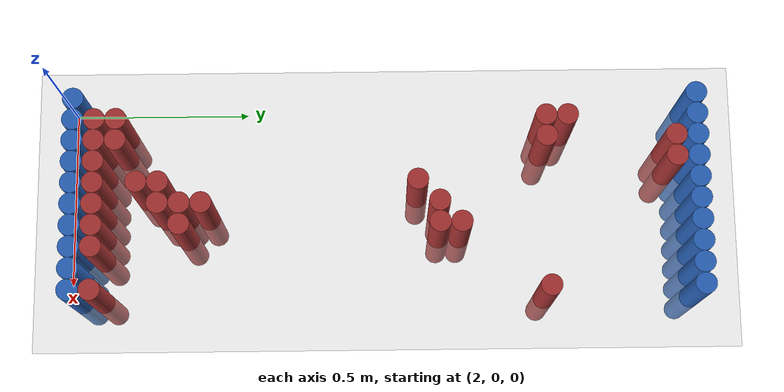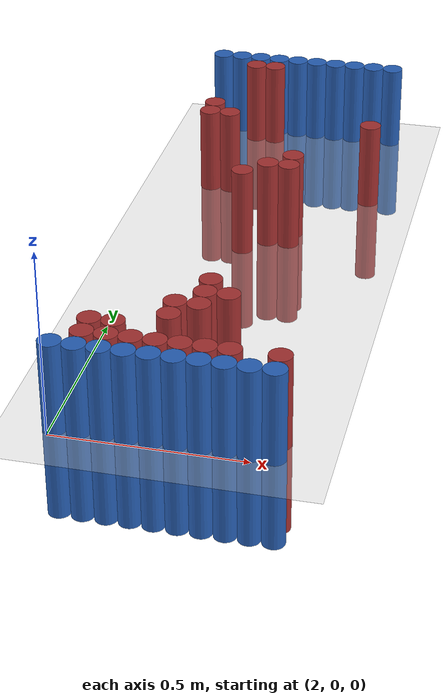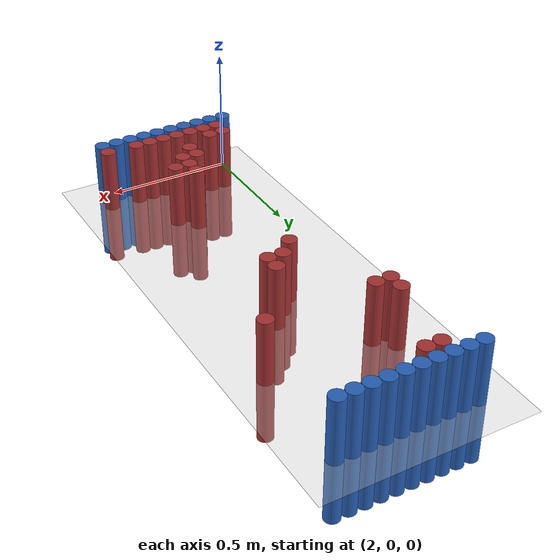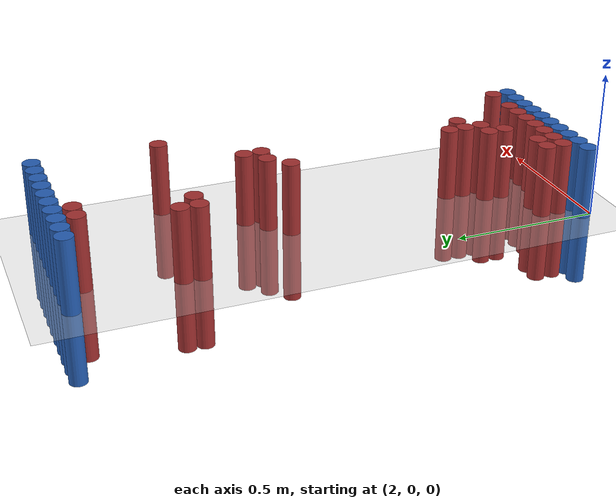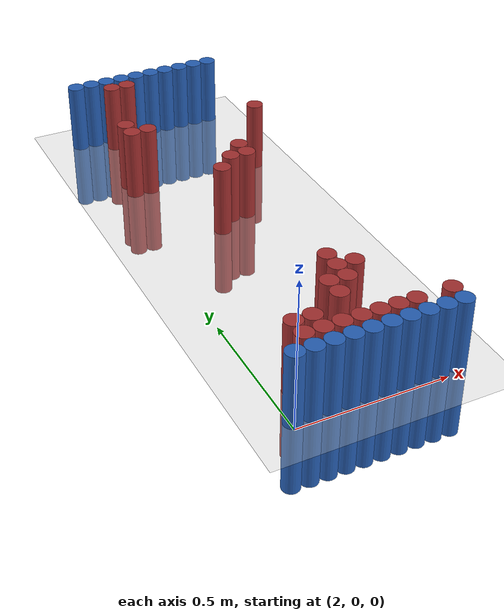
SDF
<sdf version="1.6">
 <world name="default">
  <model name="ground_plane">
   <static>1</static>
   <link name="link">
    <collision name="collision">
     <geometry><plane><normal>0 0 1</normal><size>100 100</size></plane></geometry>
     <surface><friction><ode><mu>100</mu><mu2>50</mu2></ode></friction></surface>
    </collision>
    <visual name="visual">
     <cast_shadows>0</cast_shadows>
     <geometry><plane><normal>0 0 1</normal><size>100 100</size></plane></geometry>
     <material>
      <script><uri>file://media/materials/scripts/gazebo.material</uri><name>Gazebo/Grey</name></script>
     </material>
    </visual>
   </link>
  </model>
  <model name="unit_cylinder_93">
   <static>1</static>
   <pose>2.010000 0.030000 0.000000 0.000000 0.000000 0.000000</pose>
   <link name="link">
    <inertial>
     <mass>1</mass>
     <inertia><ixx>0.145833</ixx><ixy>0</ixy><ixz>0</ixz><iyy>0.145833</iyy><iyz>0</iyz><izz>0.125</izz></inertia>
    </inertial>
    <collision name="collision">
     <geometry><cylinder><radius>0.030000</radius><length>0.5</length></cylinder></geometry>
    </collision>
    <visual name="visual">
     <geometry><cylinder><radius>0.030000</radius><length>0.5</length></cylinder></geometry>
     <material>
      <ambient>0.152000 0.379000 0.720000 1</ambient>
      <diffuse>0.152000 0.379000 0.720000 1</diffuse>
     </material>
     <material>
      <script><name>Gazebo/Grey</name><uri>file://media/materials/scripts/gazebo.material</uri></script>
     </material>
    </visual>
   </link>
  </model>
  <model name="unit_cylinder_94">
   <static>1</static>
   <pose>2.010000 1.770000 0.000000 0.000000 0.000000 0.000000</pose>
   <link name="link">
    <inertial>
     <mass>1</mass>
     <inertia><ixx>0.145833</ixx><ixy>0</ixy><ixz>0</ixz><iyy>0.145833</iyy><iyz>0</iyz><izz>0.125</izz></inertia>
    </inertial>
    <collision name="collision">
     <geometry><cylinder><radius>0.030000</radius><length>0.5</length></cylinder></geometry>
    </collision>
    <visual name="visual">
     <geometry><cylinder><radius>0.030000</radius><length>0.5</length></cylinder></geometry>
     <material>
      <ambient>0.152000 0.379000 0.720000 1</ambient>
      <diffuse>0.152000 0.379000 0.720000 1</diffuse>
     </material>
     <material>
      <script><name>Gazebo/Grey</name><uri>file://media/materials/scripts/gazebo.material</uri></script>
     </material>
    </visual>
   </link>
  </model>
  <model name="unit_cylinder_95">
   <static>1</static>
   <pose>2.070000 1.770000 0.000000 0.000000 0.000000 0.000000</pose>
   <link name="link">
    <inertial>
     <mass>1</mass>
     <inertia><ixx>0.145833</ixx><ixy>0</ixy><ixz>0</ixz><iyy>0.145833</iyy><iyz>0</iyz><izz>0.125</izz></inertia>
    </inertial>
    <collision name="collision">
     <geometry><cylinder><radius>0.030000</radius><length>0.5</length></cylinder></geometry>
    </collision>
    <visual name="visual">
     <geometry><cylinder><radius>0.030000</radius><length>0.5</length></cylinder></geometry>
     <material>
      <ambient>0.152000 0.379000 0.720000 1</ambient>
      <diffuse>0.152000 0.379000 0.720000 1</diffuse>
     </material>
     <material>
      <script><name>Gazebo/Grey</name><uri>file://media/materials/scripts/gazebo.material</uri></script>
     </material>
    </visual>
   </link>
  </model>
  <model name="unit_cylinder_96">
   <static>1</static>
   <pose>2.130000 1.770000 0.000000 0.000000 0.000000 0.000000</pose>
   <link name="link">
    <inertial>
     <mass>1</mass>
     <inertia><ixx>0.145833</ixx><ixy>0</ixy><ixz>0</ixz><iyy>0.145833</iyy><iyz>0</iyz><izz>0.125</izz></inertia>
    </inertial>
    <collision name="collision">
     <geometry><cylinder><radius>0.030000</radius><length>0.5</length></cylinder></geometry>
    </collision>
    <visual name="visual">
     <geometry><cylinder><radius>0.030000</radius><length>0.5</length></cylinder></geometry>
     <material>
      <ambient>0.152000 0.379000 0.720000 1</ambient>
      <diffuse>0.152000 0.379000 0.720000 1</diffuse>
     </material>
     <material>
      <script><name>Gazebo/Grey</name><uri>file://media/materials/scripts/gazebo.material</uri></script>
     </material>
    </visual>
   </link>
  </model>
  <model name="unit_cylinder_97">
   <static>1</static>
   <pose>2.190000 1.770000 0.000000 0.000000 0.000000 0.000000</pose>
   <link name="link">
    <inertial>
     <mass>1</mass>
     <inertia><ixx>0.145833</ixx><ixy>0</ixy><ixz>0</ixz><iyy>0.145833</iyy><iyz>0</iyz><izz>0.125</izz></inertia>
    </inertial>
    <collision name="collision">
     <geometry><cylinder><radius>0.030000</radius><length>0.5</length></cylinder></geometry>
    </collision>
    <visual name="visual">
     <geometry><cylinder><radius>0.030000</radius><length>0.5</length></cylinder></geometry>
     <material>
      <ambient>0.152000 0.379000 0.720000 1</ambient>
      <diffuse>0.152000 0.379000 0.720000 1</diffuse>
     </material>
     <material>
      <script><name>Gazebo/Grey</name><uri>file://media/materials/scripts/gazebo.material</uri></script>
     </material>
    </visual>
   </link>
  </model>
  <model name="unit_cylinder_98">
   <static>1</static>
   <pose>2.250000 1.770000 0.000000 0.000000 0.000000 0.000000</pose>
   <link name="link">
    <inertial>
     <mass>1</mass>
     <inertia><ixx>0.145833</ixx><ixy>0</ixy><ixz>0</ixz><iyy>0.145833</iyy><iyz>0</iyz><izz>0.125</izz></inertia>
    </inertial>
    <collision name="collision">
     <geometry><cylinder><radius>0.030000</radius><length>0.5</length></cylinder></geometry>
    </collision>
    <visual name="visual">
     <geometry><cylinder><radius>0.030000</radius><length>0.5</length></cylinder></geometry>
     <material>
      <ambient>0.152000 0.379000 0.720000 1</ambient>
      <diffuse>0.152000 0.379000 0.720000 1</diffuse>
     </material>
     <material>
      <script><name>Gazebo/Grey</name><uri>file://media/materials/scripts/gazebo.material</uri></script>
     </material>
    </visual>
   </link>
  </model>
  <model name="unit_cylinder_99">
   <static>1</static>
   <pose>2.310000 1.770000 0.000000 0.000000 0.000000 0.000000</pose>
   <link name="link">
    <inertial>
     <mass>1</mass>
     <inertia><ixx>0.145833</ixx><ixy>0</ixy><ixz>0</ixz><iyy>0.145833</iyy><iyz>0</iyz><izz>0.125</izz></inertia>
    </inertial>
    <collision name="collision">
     <geometry><cylinder><radius>0.030000</radius><length>0.5</length></cylinder></geometry>
    </collision>
    <visual name="visual">
     <geometry><cylinder><radius>0.030000</radius><length>0.5</length></cylinder></geometry>
     <material>
      <ambient>0.152000 0.379000 0.720000 1</ambient>
      <diffuse>0.152000 0.379000 0.720000 1</diffuse>
     </material>
     <material>
      <script><name>Gazebo/Grey</name><uri>file://media/materials/scripts/gazebo.material</uri></script>
     </material>
    </visual>
   </link>
  </model>
  <model name="unit_cylinder_100">
   <static>1</static>
   <pose>2.370000 1.770000 0.000000 0.000000 0.000000 0.000000</pose>
   <link name="link">
    <inertial>
     <mass>1</mass>
     <inertia><ixx>0.145833</ixx><ixy>0</ixy><ixz>0</ixz><iyy>0.145833</iyy><iyz>0</iyz><izz>0.125</izz></inertia>
    </inertial>
    <collision name="collision">
     <geometry><cylinder><radius>0.030000</radius><length>0.5</length></cylinder></geometry>
    </collision>
    <visual name="visual">
     <geometry><cylinder><radius>0.030000</radius><length>0.5</length></cylinder></geometry>
     <material>
      <ambient>0.152000 0.379000 0.720000 1</ambient>
      <diffuse>0.152000 0.379000 0.720000 1</diffuse>
     </material>
     <material>
      <script><name>Gazebo/Grey</name><uri>file://media/materials/scripts/gazebo.material</uri></script>
     </material>
    </visual>
   </link>
  </model>
  <model name="unit_cylinder_101">
   <static>1</static>
   <pose>2.430000 1.770000 0.000000 0.000000 0.000000 0.000000</pose>
   <link name="link">
    <inertial>
     <mass>1</mass>
     <inertia><ixx>0.145833</ixx><ixy>0</ixy><ixz>0</ixz><iyy>0.145833</iyy><iyz>0</iyz><izz>0.125</izz></inertia>
    </inertial>
    <collision name="collision">
     <geometry><cylinder><radius>0.030000</radius><length>0.5</length></cylinder></geometry>
    </collision>
    <visual name="visual">
     <geometry><cylinder><radius>0.030000</radius><length>0.5</length></cylinder></geometry>
     <material>
      <ambient>0.152000 0.379000 0.720000 1</ambient>
      <diffuse>0.152000 0.379000 0.720000 1</diffuse>
     </material>
     <material>
      <script><name>Gazebo/Grey</name><uri>file://media/materials/scripts/gazebo.material</uri></script>
     </material>
    </visual>
   </link>
  </model>
  <model name="unit_cylinder_102">
   <static>1</static>
   <pose>2.490000 1.770000 0.000000 0.000000 0.000000 0.000000</pose>
   <link name="link">
    <inertial>
     <mass>1</mass>
     <inertia><ixx>0.145833</ixx><ixy>0</ixy><ixz>0</ixz><iyy>0.145833</iyy><iyz>0</iyz><izz>0.125</izz></inertia>
    </inertial>
    <collision name="collision">
     <geometry><cylinder><radius>0.030000</radius><length>0.5</length></cylinder></geometry>
    </collision>
    <visual name="visual">
     <geometry><cylinder><radius>0.030000</radius><length>0.5</length></cylinder></geometry>
     <material>
      <ambient>0.152000 0.379000 0.720000 1</ambient>
      <diffuse>0.152000 0.379000 0.720000 1</diffuse>
     </material>
     <material>
      <script><name>Gazebo/Grey</name><uri>file://media/materials/scripts/gazebo.material</uri></script>
     </material>
    </visual>
   </link>
  </model>
  <model name="unit_cylinder_103">
   <static>1</static>
   <pose>2.550000 1.770000 0.000000 0.000000 0.000000 0.000000</pose>
   <link name="link">
    <inertial>
     <mass>1</mass>
     <inertia><ixx>0.145833</ixx><ixy>0</ixy><ixz>0</ixz><iyy>0.145833</iyy><iyz>0</iyz><izz>0.125</izz></inertia>
    </inertial>
    <collision name="collision">
     <geometry><cylinder><radius>0.030000</radius><length>0.5</length></cylinder></geometry>
    </collision>
    <visual name="visual">
     <geometry><cylinder><radius>0.030000</radius><length>0.5</length></cylinder></geometry>
     <material>
      <ambient>0.152000 0.379000 0.720000 1</ambient>
      <diffuse>0.152000 0.379000 0.720000 1</diffuse>
     </material>
     <material>
      <script><name>Gazebo/Grey</name><uri>file://media/materials/scripts/gazebo.material</uri></script>
     </material>
    </visual>
   </link>
  </model>
  <model name="unit_cylinder_125">
   <static>1</static>
   <pose>2.130000 1.710000 0.000000 0.000000 0.000000 0.000000</pose>
   <link name="link">
    <inertial>
     <mass>1</mass>
     <inertia><ixx>0.145833</ixx><ixy>0</ixy><ixz>0</ixz><iyy>0.145833</iyy><iyz>0</iyz><izz>0.125</izz></inertia>
    </inertial>
    <collision name="collision">
     <geometry><cylinder><radius>0.030000</radius><length>0.5</length></cylinder></geometry>
    </collision>
    <visual name="visual">
     <geometry><cylinder><radius>0.030000</radius><length>0.5</length></cylinder></geometry>
     <material>
      <ambient>0.648000 0.192000 0.192000 1</ambient>
      <diffuse>0.648000 0.192000 0.192000 1</diffuse>
     </material>
     <material>
      <script><name>Gazebo/Grey</name><uri>file://media/materials/scripts/gazebo.material</uri></script>
     </material>
    </visual>
   </link>
  </model>
  <model name="unit_cylinder_126">
   <static>1</static>
   <pose>2.190000 1.710000 0.000000 0.000000 0.000000 0.000000</pose>
   <link name="link">
    <inertial>
     <mass>1</mass>
     <inertia><ixx>0.145833</ixx><ixy>0</ixy><ixz>0</ixz><iyy>0.145833</iyy><iyz>0</iyz><izz>0.125</izz></inertia>
    </inertial>
    <collision name="collision">
     <geometry><cylinder><radius>0.030000</radius><length>0.5</length></cylinder></geometry>
    </collision>
    <visual name="visual">
     <geometry><cylinder><radius>0.030000</radius><length>0.5</length></cylinder></geometry>
     <material>
      <ambient>0.648000 0.192000 0.192000 1</ambient>
      <diffuse>0.648000 0.192000 0.192000 1</diffuse>
     </material>
     <material>
      <script><name>Gazebo/Grey</name><uri>file://media/materials/scripts/gazebo.material</uri></script>
     </material>
    </visual>
   </link>
  </model>
  <model name="unit_cylinder_135">
   <static>1</static>
   <pose>2.070000 1.410000 0.000000 0.000000 0.000000 0.000000</pose>
   <link name="link">
    <inertial>
     <mass>1</mass>
     <inertia><ixx>0.145833</ixx><ixy>0</ixy><ixz>0</ixz><iyy>0.145833</iyy><iyz>0</iyz><izz>0.125</izz></inertia>
    </inertial>
    <collision name="collision">
     <geometry><cylinder><radius>0.030000</radius><length>0.5</length></cylinder></geometry>
    </collision>
    <visual name="visual">
     <geometry><cylinder><radius>0.030000</radius><length>0.5</length></cylinder></geometry>
     <material>
      <ambient>0.648000 0.192000 0.192000 1</ambient>
      <diffuse>0.648000 0.192000 0.192000 1</diffuse>
     </material>
     <material>
      <script><name>Gazebo/Grey</name><uri>file://media/materials/scripts/gazebo.material</uri></script>
     </material>
    </visual>
   </link>
  </model>
  <model name="unit_cylinder_138">
   <static>1</static>
   <pose>2.070000 1.350000 0.000000 0.000000 0.000000 0.000000</pose>
   <link name="link">
    <inertial>
     <mass>1</mass>
     <inertia><ixx>0.145833</ixx><ixy>0</ixy><ixz>0</ixz><iyy>0.145833</iyy><iyz>0</iyz><izz>0.125</izz></inertia>
    </inertial>
    <collision name="collision">
     <geometry><cylinder><radius>0.030000</radius><length>0.5</length></cylinder></geometry>
    </collision>
    <visual name="visual">
     <geometry><cylinder><radius>0.030000</radius><length>0.5</length></cylinder></geometry>
     <material>
      <ambient>0.648000 0.192000 0.192000 1</ambient>
      <diffuse>0.648000 0.192000 0.192000 1</diffuse>
     </material>
     <material>
      <script><name>Gazebo/Grey</name><uri>file://media/materials/scripts/gazebo.material</uri></script>
     </material>
    </visual>
   </link>
  </model>
  <model name="unit_cylinder_139">
   <static>1</static>
   <pose>2.130000 1.350000 0.000000 0.000000 0.000000 0.000000</pose>
   <link name="link">
    <inertial>
     <mass>1</mass>
     <inertia><ixx>0.145833</ixx><ixy>0</ixy><ixz>0</ixz><iyy>0.145833</iyy><iyz>0</iyz><izz>0.125</izz></inertia>
    </inertial>
    <collision name="collision">
     <geometry><cylinder><radius>0.030000</radius><length>0.5</length></cylinder></geometry>
    </collision>
    <visual name="visual">
     <geometry><cylinder><radius>0.030000</radius><length>0.5</length></cylinder></geometry>
     <material>
      <ambient>0.648000 0.192000 0.192000 1</ambient>
      <diffuse>0.648000 0.192000 0.192000 1</diffuse>
     </material>
     <material>
      <script><name>Gazebo/Grey</name><uri>file://media/materials/scripts/gazebo.material</uri></script>
     </material>
    </visual>
   </link>
  </model>
  <model name="unit_cylinder_140">
   <static>1</static>
   <pose>2.550000 1.350000 0.000000 0.000000 0.000000 0.000000</pose>
   <link name="link">
    <inertial>
     <mass>1</mass>
     <inertia><ixx>0.145833</ixx><ixy>0</ixy><ixz>0</ixz><iyy>0.145833</iyy><iyz>0</iyz><izz>0.125</izz></inertia>
    </inertial>
    <collision name="collision">
     <geometry><cylinder><radius>0.030000</radius><length>0.5</length></cylinder></geometry>
    </collision>
    <visual name="visual">
     <geometry><cylinder><radius>0.030000</radius><length>0.5</length></cylinder></geometry>
     <material>
      <ambient>0.648000 0.192000 0.192000 1</ambient>
      <diffuse>0.648000 0.192000 0.192000 1</diffuse>
     </material>
     <material>
      <script><name>Gazebo/Grey</name><uri>file://media/materials/scripts/gazebo.material</uri></script>
     </material>
    </visual>
   </link>
  </model>
  <model name="unit_cylinder_148">
   <static>1</static>
   <pose>2.370000 1.110000 0.000000 0.000000 0.000000 0.000000</pose>
   <link name="link">
    <inertial>
     <mass>1</mass>
     <inertia><ixx>0.145833</ixx><ixy>0</ixy><ixz>0</ixz><iyy>0.145833</iyy><iyz>0</iyz><izz>0.125</izz></inertia>
    </inertial>
    <collision name="collision">
     <geometry><cylinder><radius>0.030000</radius><length>0.5</length></cylinder></geometry>
    </collision>
    <visual name="visual">
     <geometry><cylinder><radius>0.030000</radius><length>0.5</length></cylinder></geometry>
     <material>
      <ambient>0.648000 0.192000 0.192000 1</ambient>
      <diffuse>0.648000 0.192000 0.192000 1</diffuse>
     </material>
     <material>
      <script><name>Gazebo/Grey</name><uri>file://media/materials/scripts/gazebo.material</uri></script>
     </material>
    </visual>
   </link>
  </model>
  <model name="unit_cylinder_152">
   <static>1</static>
   <pose>2.310000 1.050000 0.000000 0.000000 0.000000 0.000000</pose>
   <link name="link">
    <inertial>
     <mass>1</mass>
     <inertia><ixx>0.145833</ixx><ixy>0</ixy><ixz>0</ixz><iyy>0.145833</iyy><iyz>0</iyz><izz>0.125</izz></inertia>
    </inertial>
    <collision name="collision">
     <geometry><cylinder><radius>0.030000</radius><length>0.5</length></cylinder></geometry>
    </collision>
    <visual name="visual">
     <geometry><cylinder><radius>0.030000</radius><length>0.5</length></cylinder></geometry>
     <material>
      <ambient>0.648000 0.192000 0.192000 1</ambient>
      <diffuse>0.648000 0.192000 0.192000 1</diffuse>
     </material>
     <material>
      <script><name>Gazebo/Grey</name><uri>file://media/materials/scripts/gazebo.material</uri></script>
     </material>
    </visual>
   </link>
  </model>
  <model name="unit_cylinder_153">
   <static>1</static>
   <pose>2.370000 1.050000 0.000000 0.000000 0.000000 0.000000</pose>
   <link name="link">
    <inertial>
     <mass>1</mass>
     <inertia><ixx>0.145833</ixx><ixy>0</ixy><ixz>0</ixz><iyy>0.145833</iyy><iyz>0</iyz><izz>0.125</izz></inertia>
    </inertial>
    <collision name="collision">
     <geometry><cylinder><radius>0.030000</radius><length>0.5</length></cylinder></geometry>
    </collision>
    <visual name="visual">
     <geometry><cylinder><radius>0.030000</radius><length>0.5</length></cylinder></geometry>
     <material>
      <ambient>0.648000 0.192000 0.192000 1</ambient>
      <diffuse>0.648000 0.192000 0.192000 1</diffuse>
     </material>
     <material>
      <script><name>Gazebo/Grey</name><uri>file://media/materials/scripts/gazebo.material</uri></script>
     </material>
    </visual>
   </link>
  </model>
  <model name="unit_cylinder_156">
   <static>1</static>
   <pose>2.250000 0.990000 0.000000 0.000000 0.000000 0.000000</pose>
   <link name="link">
    <inertial>
     <mass>1</mass>
     <inertia><ixx>0.145833</ixx><ixy>0</ixy><ixz>0</ixz><iyy>0.145833</iyy><iyz>0</iyz><izz>0.125</izz></inertia>
    </inertial>
    <collision name="collision">
     <geometry><cylinder><radius>0.030000</radius><length>0.5</length></cylinder></geometry>
    </collision>
    <visual name="visual">
     <geometry><cylinder><radius>0.030000</radius><length>0.5</length></cylinder></geometry>
     <material>
      <ambient>0.648000 0.192000 0.192000 1</ambient>
      <diffuse>0.648000 0.192000 0.192000 1</diffuse>
     </material>
     <material>
      <script><name>Gazebo/Grey</name><uri>file://media/materials/scripts/gazebo.material</uri></script>
     </material>
    </visual>
   </link>
  </model>
  <model name="unit_cylinder_166">
   <static>1</static>
   <pose>2.310000 0.390000 0.000000 0.000000 0.000000 0.000000</pose>
   <link name="link">
    <inertial>
     <mass>1</mass>
     <inertia><ixx>0.145833</ixx><ixy>0</ixy><ixz>0</ixz><iyy>0.145833</iyy><iyz>0</iyz><izz>0.125</izz></inertia>
    </inertial>
    <collision name="collision">
     <geometry><cylinder><radius>0.030000</radius><length>0.5</length></cylinder></geometry>
    </collision>
    <visual name="visual">
     <geometry><cylinder><radius>0.030000</radius><length>0.5</length></cylinder></geometry>
     <material>
      <ambient>0.648000 0.192000 0.192000 1</ambient>
      <diffuse>0.648000 0.192000 0.192000 1</diffuse>
     </material>
     <material>
      <script><name>Gazebo/Grey</name><uri>file://media/materials/scripts/gazebo.material</uri></script>
     </material>
    </visual>
   </link>
  </model>
  <model name="unit_cylinder_170">
   <static>1</static>
   <pose>2.310000 0.330000 0.000000 0.000000 0.000000 0.000000</pose>
   <link name="link">
    <inertial>
     <mass>1</mass>
     <inertia><ixx>0.145833</ixx><ixy>0</ixy><ixz>0</ixz><iyy>0.145833</iyy><iyz>0</iyz><izz>0.125</izz></inertia>
    </inertial>
    <collision name="collision">
     <geometry><cylinder><radius>0.030000</radius><length>0.5</length></cylinder></geometry>
    </collision>
    <visual name="visual">
     <geometry><cylinder><radius>0.030000</radius><length>0.5</length></cylinder></geometry>
     <material>
      <ambient>0.648000 0.192000 0.192000 1</ambient>
      <diffuse>0.648000 0.192000 0.192000 1</diffuse>
     </material>
     <material>
      <script><name>Gazebo/Grey</name><uri>file://media/materials/scripts/gazebo.material</uri></script>
     </material>
    </visual>
   </link>
  </model>
  <model name="unit_cylinder_171">
   <static>1</static>
   <pose>2.370000 0.330000 0.000000 0.000000 0.000000 0.000000</pose>
   <link name="link">
    <inertial>
     <mass>1</mass>
     <inertia><ixx>0.145833</ixx><ixy>0</ixy><ixz>0</ixz><iyy>0.145833</iyy><iyz>0</iyz><izz>0.125</izz></inertia>
    </inertial>
    <collision name="collision">
     <geometry><cylinder><radius>0.030000</radius><length>0.5</length></cylinder></geometry>
    </collision>
    <visual name="visual">
     <geometry><cylinder><radius>0.030000</radius><length>0.5</length></cylinder></geometry>
     <material>
      <ambient>0.648000 0.192000 0.192000 1</ambient>
      <diffuse>0.648000 0.192000 0.192000 1</diffuse>
     </material>
     <material>
      <script><name>Gazebo/Grey</name><uri>file://media/materials/scripts/gazebo.material</uri></script>
     </material>
    </visual>
   </link>
  </model>
  <model name="unit_cylinder_175">
   <static>1</static>
   <pose>2.250000 0.270000 0.000000 0.000000 0.000000 0.000000</pose>
   <link name="link">
    <inertial>
     <mass>1</mass>
     <inertia><ixx>0.145833</ixx><ixy>0</ixy><ixz>0</ixz><iyy>0.145833</iyy><iyz>0</iyz><izz>0.125</izz></inertia>
    </inertial>
    <collision name="collision">
     <geometry><cylinder><radius>0.030000</radius><length>0.5</length></cylinder></geometry>
    </collision>
    <visual name="visual">
     <geometry><cylinder><radius>0.030000</radius><length>0.5</length></cylinder></geometry>
     <material>
      <ambient>0.648000 0.192000 0.192000 1</ambient>
      <diffuse>0.648000 0.192000 0.192000 1</diffuse>
     </material>
     <material>
      <script><name>Gazebo/Grey</name><uri>file://media/materials/scripts/gazebo.material</uri></script>
     </material>
    </visual>
   </link>
  </model>
  <model name="unit_cylinder_176">
   <static>1</static>
   <pose>2.310000 0.270000 0.000000 0.000000 0.000000 0.000000</pose>
   <link name="link">
    <inertial>
     <mass>1</mass>
     <inertia><ixx>0.145833</ixx><ixy>0</ixy><ixz>0</ixz><iyy>0.145833</iyy><iyz>0</iyz><izz>0.125</izz></inertia>
    </inertial>
    <collision name="collision">
     <geometry><cylinder><radius>0.030000</radius><length>0.5</length></cylinder></geometry>
    </collision>
    <visual name="visual">
     <geometry><cylinder><radius>0.030000</radius><length>0.5</length></cylinder></geometry>
     <material>
      <ambient>0.648000 0.192000 0.192000 1</ambient>
      <diffuse>0.648000 0.192000 0.192000 1</diffuse>
     </material>
     <material>
      <script><name>Gazebo/Grey</name><uri>file://media/materials/scripts/gazebo.material</uri></script>
     </material>
    </visual>
   </link>
  </model>
  <model name="unit_cylinder_179">
   <static>1</static>
   <pose>2.250000 0.210000 0.000000 0.000000 0.000000 0.000000</pose>
   <link name="link">
    <inertial>
     <mass>1</mass>
     <inertia><ixx>0.145833</ixx><ixy>0</ixy><ixz>0</ixz><iyy>0.145833</iyy><iyz>0</iyz><izz>0.125</izz></inertia>
    </inertial>
    <collision name="collision">
     <geometry><cylinder><radius>0.030000</radius><length>0.5</length></cylinder></geometry>
    </collision>
    <visual name="visual">
     <geometry><cylinder><radius>0.030000</radius><length>0.5</length></cylinder></geometry>
     <material>
      <ambient>0.648000 0.192000 0.192000 1</ambient>
      <diffuse>0.648000 0.192000 0.192000 1</diffuse>
     </material>
     <material>
      <script><name>Gazebo/Grey</name><uri>file://media/materials/scripts/gazebo.material</uri></script>
     </material>
    </visual>
   </link>
  </model>
  <model name="unit_cylinder_183">
   <static>1</static>
   <pose>2.070000 0.150000 0.000000 0.000000 0.000000 0.000000</pose>
   <link name="link">
    <inertial>
     <mass>1</mass>
     <inertia><ixx>0.145833</ixx><ixy>0</ixy><ixz>0</ixz><iyy>0.145833</iyy><iyz>0</iyz><izz>0.125</izz></inertia>
    </inertial>
    <collision name="collision">
     <geometry><cylinder><radius>0.030000</radius><length>0.5</length></cylinder></geometry>
    </collision>
    <visual name="visual">
     <geometry><cylinder><radius>0.030000</radius><length>0.5</length></cylinder></geometry>
     <material>
      <ambient>0.648000 0.192000 0.192000 1</ambient>
      <diffuse>0.648000 0.192000 0.192000 1</diffuse>
     </material>
     <material>
      <script><name>Gazebo/Grey</name><uri>file://media/materials/scripts/gazebo.material</uri></script>
     </material>
    </visual>
   </link>
  </model>
  <model name="unit_cylinder_184">
   <static>1</static>
   <pose>2.130000 0.150000 0.000000 0.000000 0.000000 0.000000</pose>
   <link name="link">
    <inertial>
     <mass>1</mass>
     <inertia><ixx>0.145833</ixx><ixy>0</ixy><ixz>0</ixz><iyy>0.145833</iyy><iyz>0</iyz><izz>0.125</izz></inertia>
    </inertial>
    <collision name="collision">
     <geometry><cylinder><radius>0.030000</radius><length>0.5</length></cylinder></geometry>
    </collision>
    <visual name="visual">
     <geometry><cylinder><radius>0.030000</radius><length>0.5</length></cylinder></geometry>
     <material>
      <ambient>0.648000 0.192000 0.192000 1</ambient>
      <diffuse>0.648000 0.192000 0.192000 1</diffuse>
     </material>
     <material>
      <script><name>Gazebo/Grey</name><uri>file://media/materials/scripts/gazebo.material</uri></script>
     </material>
    </visual>
   </link>
  </model>
  <model name="unit_cylinder_187">
   <static>1</static>
   <pose>2.070000 0.090000 0.000000 0.000000 0.000000 0.000000</pose>
   <link name="link">
    <inertial>
     <mass>1</mass>
     <inertia><ixx>0.145833</ixx><ixy>0</ixy><ixz>0</ixz><iyy>0.145833</iyy><iyz>0</iyz><izz>0.125</izz></inertia>
    </inertial>
    <collision name="collision">
     <geometry><cylinder><radius>0.030000</radius><length>0.5</length></cylinder></geometry>
    </collision>
    <visual name="visual">
     <geometry><cylinder><radius>0.030000</radius><length>0.5</length></cylinder></geometry>
     <material>
      <ambient>0.648000 0.192000 0.192000 1</ambient>
      <diffuse>0.648000 0.192000 0.192000 1</diffuse>
     </material>
     <material>
      <script><name>Gazebo/Grey</name><uri>file://media/materials/scripts/gazebo.material</uri></script>
     </material>
    </visual>
   </link>
  </model>
  <model name="unit_cylinder_188">
   <static>1</static>
   <pose>2.130000 0.090000 0.000000 0.000000 0.000000 0.000000</pose>
   <link name="link">
    <inertial>
     <mass>1</mass>
     <inertia><ixx>0.145833</ixx><ixy>0</ixy><ixz>0</ixz><iyy>0.145833</iyy><iyz>0</iyz><izz>0.125</izz></inertia>
    </inertial>
    <collision name="collision">
     <geometry><cylinder><radius>0.030000</radius><length>0.5</length></cylinder></geometry>
    </collision>
    <visual name="visual">
     <geometry><cylinder><radius>0.030000</radius><length>0.5</length></cylinder></geometry>
     <material>
      <ambient>0.648000 0.192000 0.192000 1</ambient>
      <diffuse>0.648000 0.192000 0.192000 1</diffuse>
     </material>
     <material>
      <script><name>Gazebo/Grey</name><uri>file://media/materials/scripts/gazebo.material</uri></script>
     </material>
    </visual>
   </link>
  </model>
  <model name="unit_cylinder_189">
   <static>1</static>
   <pose>2.190000 0.090000 0.000000 0.000000 0.000000 0.000000</pose>
   <link name="link">
    <inertial>
     <mass>1</mass>
     <inertia><ixx>0.145833</ixx><ixy>0</ixy><ixz>0</ixz><iyy>0.145833</iyy><iyz>0</iyz><izz>0.125</izz></inertia>
    </inertial>
    <collision name="collision">
     <geometry><cylinder><radius>0.030000</radius><length>0.5</length></cylinder></geometry>
    </collision>
    <visual name="visual">
     <geometry><cylinder><radius>0.030000</radius><length>0.5</length></cylinder></geometry>
     <material>
      <ambient>0.648000 0.192000 0.192000 1</ambient>
      <diffuse>0.648000 0.192000 0.192000 1</diffuse>
     </material>
     <material>
      <script><name>Gazebo/Grey</name><uri>file://media/materials/scripts/gazebo.material</uri></script>
     </material>
    </visual>
   </link>
  </model>
  <model name="unit_cylinder_190">
   <static>1</static>
   <pose>2.250000 0.090000 0.000000 0.000000 0.000000 0.000000</pose>
   <link name="link">
    <inertial>
     <mass>1</mass>
     <inertia><ixx>0.145833</ixx><ixy>0</ixy><ixz>0</ixz><iyy>0.145833</iyy><iyz>0</iyz><izz>0.125</izz></inertia>
    </inertial>
    <collision name="collision">
     <geometry><cylinder><radius>0.030000</radius><length>0.5</length></cylinder></geometry>
    </collision>
    <visual name="visual">
     <geometry><cylinder><radius>0.030000</radius><length>0.5</length></cylinder></geometry>
     <material>
      <ambient>0.648000 0.192000 0.192000 1</ambient>
      <diffuse>0.648000 0.192000 0.192000 1</diffuse>
     </material>
     <material>
      <script><name>Gazebo/Grey</name><uri>file://media/materials/scripts/gazebo.material</uri></script>
     </material>
    </visual>
   </link>
  </model>
  <model name="unit_cylinder_191">
   <static>1</static>
   <pose>2.310000 0.090000 0.000000 0.000000 0.000000 0.000000</pose>
   <link name="link">
    <inertial>
     <mass>1</mass>
     <inertia><ixx>0.145833</ixx><ixy>0</ixy><ixz>0</ixz><iyy>0.145833</iyy><iyz>0</iyz><izz>0.125</izz></inertia>
    </inertial>
    <collision name="collision">
     <geometry><cylinder><radius>0.030000</radius><length>0.5</length></cylinder></geometry>
    </collision>
    <visual name="visual">
     <geometry><cylinder><radius>0.030000</radius><length>0.5</length></cylinder></geometry>
     <material>
      <ambient>0.648000 0.192000 0.192000 1</ambient>
      <diffuse>0.648000 0.192000 0.192000 1</diffuse>
     </material>
     <material>
      <script><name>Gazebo/Grey</name><uri>file://media/materials/scripts/gazebo.material</uri></script>
     </material>
    </visual>
   </link>
  </model>
  <model name="unit_cylinder_192">
   <static>1</static>
   <pose>2.370000 0.090000 0.000000 0.000000 0.000000 0.000000</pose>
   <link name="link">
    <inertial>
     <mass>1</mass>
     <inertia><ixx>0.145833</ixx><ixy>0</ixy><ixz>0</ixz><iyy>0.145833</iyy><iyz>0</iyz><izz>0.125</izz></inertia>
    </inertial>
    <collision name="collision">
     <geometry><cylinder><radius>0.030000</radius><length>0.5</length></cylinder></geometry>
    </collision>
    <visual name="visual">
     <geometry><cylinder><radius>0.030000</radius><length>0.5</length></cylinder></geometry>
     <material>
      <ambient>0.648000 0.192000 0.192000 1</ambient>
      <diffuse>0.648000 0.192000 0.192000 1</diffuse>
     </material>
     <material>
      <script><name>Gazebo/Grey</name><uri>file://media/materials/scripts/gazebo.material</uri></script>
     </material>
    </visual>
   </link>
  </model>
  <model name="unit_cylinder_193">
   <static>1</static>
   <pose>2.430000 0.090000 0.000000 0.000000 0.000000 0.000000</pose>
   <link name="link">
    <inertial>
     <mass>1</mass>
     <inertia><ixx>0.145833</ixx><ixy>0</ixy><ixz>0</ixz><iyy>0.145833</iyy><iyz>0</iyz><izz>0.125</izz></inertia>
    </inertial>
    <collision name="collision">
     <geometry><cylinder><radius>0.030000</radius><length>0.5</length></cylinder></geometry>
    </collision>
    <visual name="visual">
     <geometry><cylinder><radius>0.030000</radius><length>0.5</length></cylinder></geometry>
     <material>
      <ambient>0.648000 0.192000 0.192000 1</ambient>
      <diffuse>0.648000 0.192000 0.192000 1</diffuse>
     </material>
     <material>
      <script><name>Gazebo/Grey</name><uri>file://media/materials/scripts/gazebo.material</uri></script>
     </material>
    </visual>
   </link>
  </model>
  <model name="unit_cylinder_194">
   <static>1</static>
   <pose>2.550000 0.090000 0.000000 0.000000 0.000000 0.000000</pose>
   <link name="link">
    <inertial>
     <mass>1</mass>
     <inertia><ixx>0.145833</ixx><ixy>0</ixy><ixz>0</ixz><iyy>0.145833</iyy><iyz>0</iyz><izz>0.125</izz></inertia>
    </inertial>
    <collision name="collision">
     <geometry><cylinder><radius>0.030000</radius><length>0.5</length></cylinder></geometry>
    </collision>
    <visual name="visual">
     <geometry><cylinder><radius>0.030000</radius><length>0.5</length></cylinder></geometry>
     <material>
      <ambient>0.648000 0.192000 0.192000 1</ambient>
      <diffuse>0.648000 0.192000 0.192000 1</diffuse>
     </material>
     <material>
      <script><name>Gazebo/Grey</name><uri>file://media/materials/scripts/gazebo.material</uri></script>
     </material>
    </visual>
   </link>
  </model>
  <model name="unit_cylinder_202">
   <static>1</static>
   <pose>2.070000 0.030000 0.000000 0.000000 0.000000 0.000000</pose>
   <link name="link">
    <inertial>
     <mass>1</mass>
     <inertia><ixx>0.145833</ixx><ixy>0</ixy><ixz>0</ixz><iyy>0.145833</iyy><iyz>0</iyz><izz>0.125</izz></inertia>
    </inertial>
    <collision name="collision">
     <geometry><cylinder><radius>0.030000</radius><length>0.5</length></cylinder></geometry>
    </collision>
    <visual name="visual">
     <geometry><cylinder><radius>0.030000</radius><length>0.5</length></cylinder></geometry>
     <material>
      <ambient>0.152000 0.379000 0.720000 1</ambient>
      <diffuse>0.152000 0.379000 0.720000 1</diffuse>
     </material>
     <material>
      <script><name>Gazebo/Grey</name><uri>file://media/materials/scripts/gazebo.material</uri></script>
     </material>
    </visual>
   </link>
  </model>
  <model name="unit_cylinder_203">
   <static>1</static>
   <pose>2.130000 0.030000 0.000000 0.000000 0.000000 0.000000</pose>
   <link name="link">
    <inertial>
     <mass>1</mass>
     <inertia><ixx>0.145833</ixx><ixy>0</ixy><ixz>0</ixz><iyy>0.145833</iyy><iyz>0</iyz><izz>0.125</izz></inertia>
    </inertial>
    <collision name="collision">
     <geometry><cylinder><radius>0.030000</radius><length>0.5</length></cylinder></geometry>
    </collision>
    <visual name="visual">
     <geometry><cylinder><radius>0.030000</radius><length>0.5</length></cylinder></geometry>
     <material>
      <ambient>0.152000 0.379000 0.720000 1</ambient>
      <diffuse>0.152000 0.379000 0.720000 1</diffuse>
     </material>
     <material>
      <script><name>Gazebo/Grey</name><uri>file://media/materials/scripts/gazebo.material</uri></script>
     </material>
    </visual>
   </link>
  </model>
  <model name="unit_cylinder_204">
   <static>1</static>
   <pose>2.190000 0.030000 0.000000 0.000000 0.000000 0.000000</pose>
   <link name="link">
    <inertial>
     <mass>1</mass>
     <inertia><ixx>0.145833</ixx><ixy>0</ixy><ixz>0</ixz><iyy>0.145833</iyy><iyz>0</iyz><izz>0.125</izz></inertia>
    </inertial>
    <collision name="collision">
     <geometry><cylinder><radius>0.030000</radius><length>0.5</length></cylinder></geometry>
    </collision>
    <visual name="visual">
     <geometry><cylinder><radius>0.030000</radius><length>0.5</length></cylinder></geometry>
     <material>
      <ambient>0.152000 0.379000 0.720000 1</ambient>
      <diffuse>0.152000 0.379000 0.720000 1</diffuse>
     </material>
     <material>
      <script><name>Gazebo/Grey</name><uri>file://media/materials/scripts/gazebo.material</uri></script>
     </material>
    </visual>
   </link>
  </model>
  <model name="unit_cylinder_205">
   <static>1</static>
   <pose>2.250000 0.030000 0.000000 0.000000 0.000000 0.000000</pose>
   <link name="link">
    <inertial>
     <mass>1</mass>
     <inertia><ixx>0.145833</ixx><ixy>0</ixy><ixz>0</ixz><iyy>0.145833</iyy><iyz>0</iyz><izz>0.125</izz></inertia>
    </inertial>
    <collision name="collision">
     <geometry><cylinder><radius>0.030000</radius><length>0.5</length></cylinder></geometry>
    </collision>
    <visual name="visual">
     <geometry><cylinder><radius>0.030000</radius><length>0.5</length></cylinder></geometry>
     <material>
      <ambient>0.152000 0.379000 0.720000 1</ambient>
      <diffuse>0.152000 0.379000 0.720000 1</diffuse>
     </material>
     <material>
      <script><name>Gazebo/Grey</name><uri>file://media/materials/scripts/gazebo.material</uri></script>
     </material>
    </visual>
   </link>
  </model>
  <model name="unit_cylinder_206">
   <static>1</static>
   <pose>2.310000 0.030000 0.000000 0.000000 0.000000 0.000000</pose>
   <link name="link">
    <inertial>
     <mass>1</mass>
     <inertia><ixx>0.145833</ixx><ixy>0</ixy><ixz>0</ixz><iyy>0.145833</iyy><iyz>0</iyz><izz>0.125</izz></inertia>
    </inertial>
    <collision name="collision">
     <geometry><cylinder><radius>0.030000</radius><length>0.5</length></cylinder></geometry>
    </collision>
    <visual name="visual">
     <geometry><cylinder><radius>0.030000</radius><length>0.5</length></cylinder></geometry>
     <material>
      <ambient>0.152000 0.379000 0.720000 1</ambient>
      <diffuse>0.152000 0.379000 0.720000 1</diffuse>
     </material>
     <material>
      <script><name>Gazebo/Grey</name><uri>file://media/materials/scripts/gazebo.material</uri></script>
     </material>
    </visual>
   </link>
  </model>
  <model name="unit_cylinder_207">
   <static>1</static>
   <pose>2.370000 0.030000 0.000000 0.000000 0.000000 0.000000</pose>
   <link name="link">
    <inertial>
     <mass>1</mass>
     <inertia><ixx>0.145833</ixx><ixy>0</ixy><ixz>0</ixz><iyy>0.145833</iyy><iyz>0</iyz><izz>0.125</izz></inertia>
    </inertial>
    <collision name="collision">
     <geometry><cylinder><radius>0.030000</radius><length>0.5</length></cylinder></geometry>
    </collision>
    <visual name="visual">
     <geometry><cylinder><radius>0.030000</radius><length>0.5</length></cylinder></geometry>
     <material>
      <ambient>0.152000 0.379000 0.720000 1</ambient>
      <diffuse>0.152000 0.379000 0.720000 1</diffuse>
     </material>
     <material>
      <script><name>Gazebo/Grey</name><uri>file://media/materials/scripts/gazebo.material</uri></script>
     </material>
    </visual>
   </link>
  </model>
  <model name="unit_cylinder_208">
   <static>1</static>
   <pose>2.430000 0.030000 0.000000 0.000000 0.000000 0.000000</pose>
   <link name="link">
    <inertial>
     <mass>1</mass>
     <inertia><ixx>0.145833</ixx><ixy>0</ixy><ixz>0</ixz><iyy>0.145833</iyy><iyz>0</iyz><izz>0.125</izz></inertia>
    </inertial>
    <collision name="collision">
     <geometry><cylinder><radius>0.030000</radius><length>0.5</length></cylinder></geometry>
    </collision>
    <visual name="visual">
     <geometry><cylinder><radius>0.030000</radius><length>0.5</length></cylinder></geometry>
     <material>
      <ambient>0.152000 0.379000 0.720000 1</ambient>
      <diffuse>0.152000 0.379000 0.720000 1</diffuse>
     </material>
     <material>
      <script><name>Gazebo/Grey</name><uri>file://media/materials/scripts/gazebo.material</uri></script>
     </material>
    </visual>
   </link>
  </model>
  <model name="unit_cylinder_209">
   <static>1</static>
   <pose>2.490000 0.030000 0.000000 0.000000 0.000000 0.000000</pose>
   <link name="link">
    <inertial>
     <mass>1</mass>
     <inertia><ixx>0.145833</ixx><ixy>0</ixy><ixz>0</ixz><iyy>0.145833</iyy><iyz>0</iyz><izz>0.125</izz></inertia>
    </inertial>
    <collision name="collision">
     <geometry><cylinder><radius>0.030000</radius><length>0.5</length></cylinder></geometry>
    </collision>
    <visual name="visual">
     <geometry><cylinder><radius>0.030000</radius><length>0.5</length></cylinder></geometry>
     <material>
      <ambient>0.152000 0.379000 0.720000 1</ambient>
      <diffuse>0.152000 0.379000 0.720000 1</diffuse>
     </material>
     <material>
      <script><name>Gazebo/Grey</name><uri>file://media/materials/scripts/gazebo.material</uri></script>
     </material>
    </visual>
   </link>
  </model>
  <model name="unit_cylinder_210">
   <static>1</static>
   <pose>2.550000 0.030000 0.000000 0.000000 0.000000 0.000000</pose>
   <link name="link">
    <inertial>
     <mass>1</mass>
     <inertia><ixx>0.145833</ixx><ixy>0</ixy><ixz>0</ixz><iyy>0.145833</iyy><iyz>0</iyz><izz>0.125</izz></inertia>
    </inertial>
    <collision name="collision">
     <geometry><cylinder><radius>0.030000</radius><length>0.5</length></cylinder></geometry>
    </collision>
    <visual name="visual">
     <geometry><cylinder><radius>0.030000</radius><length>0.5</length></cylinder></geometry>
     <material>
      <ambient>0.152000 0.379000 0.720000 1</ambient>
      <diffuse>0.152000 0.379000 0.720000 1</diffuse>
     </material>
     <material>
      <script><name>Gazebo/Grey</name><uri>file://media/materials/scripts/gazebo.material</uri></script>
     </material>
    </visual>
   </link>
  </model>
 </world>
</sdf>
